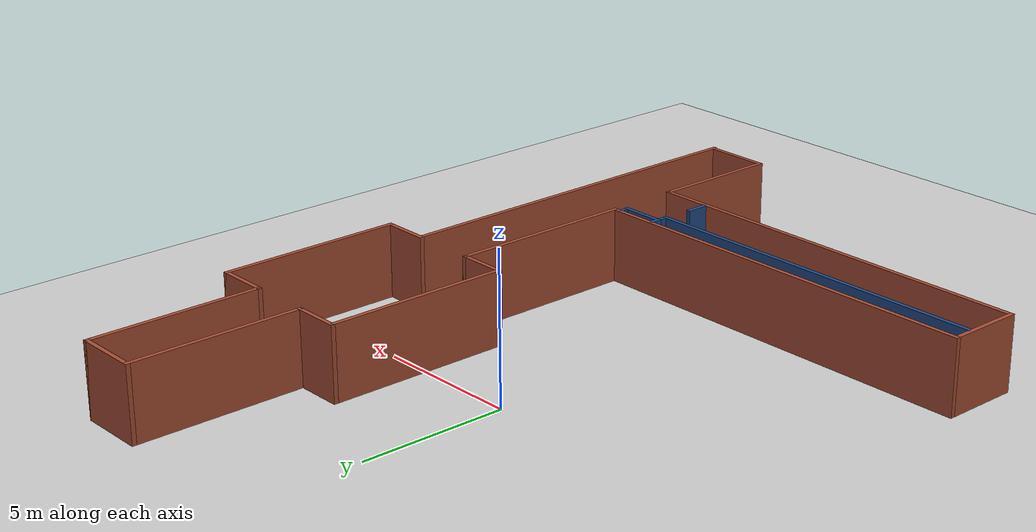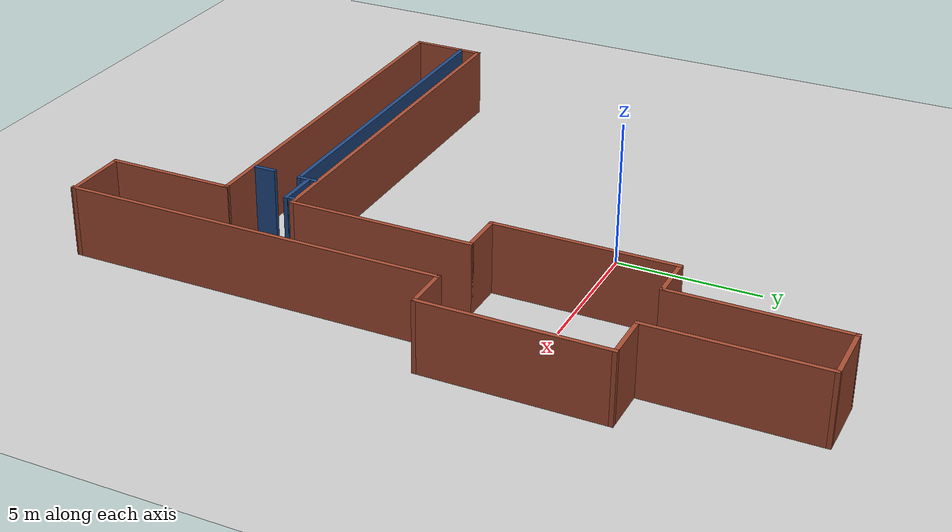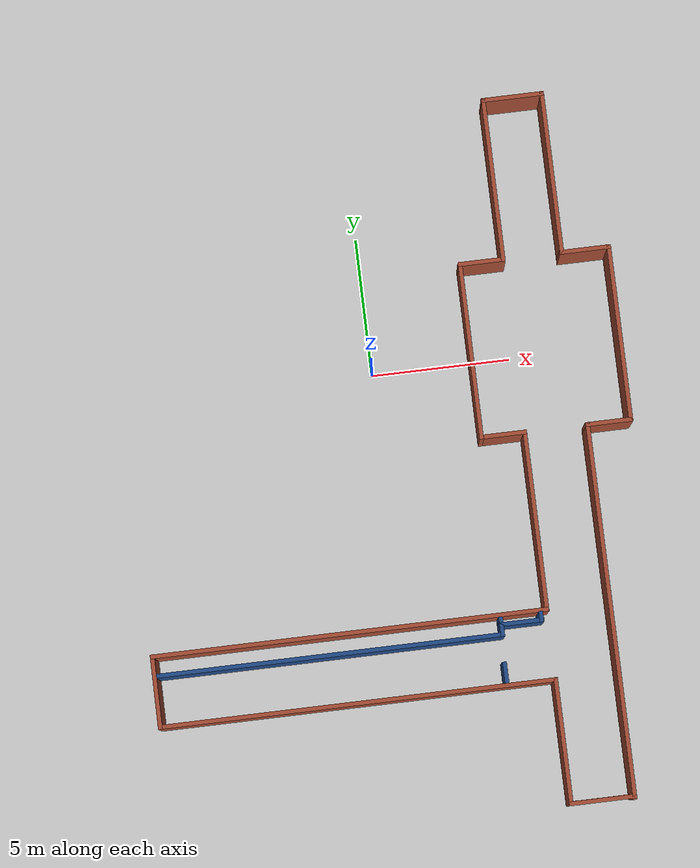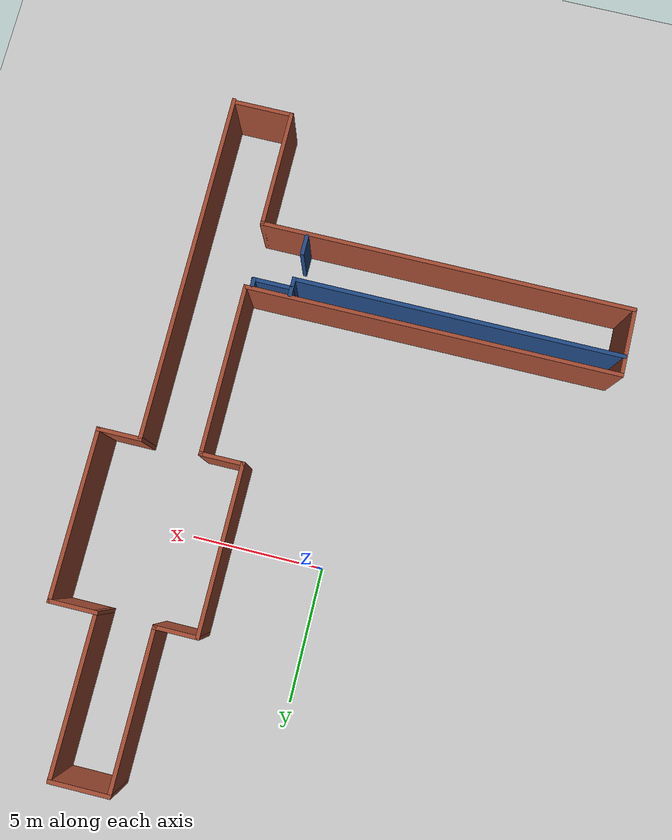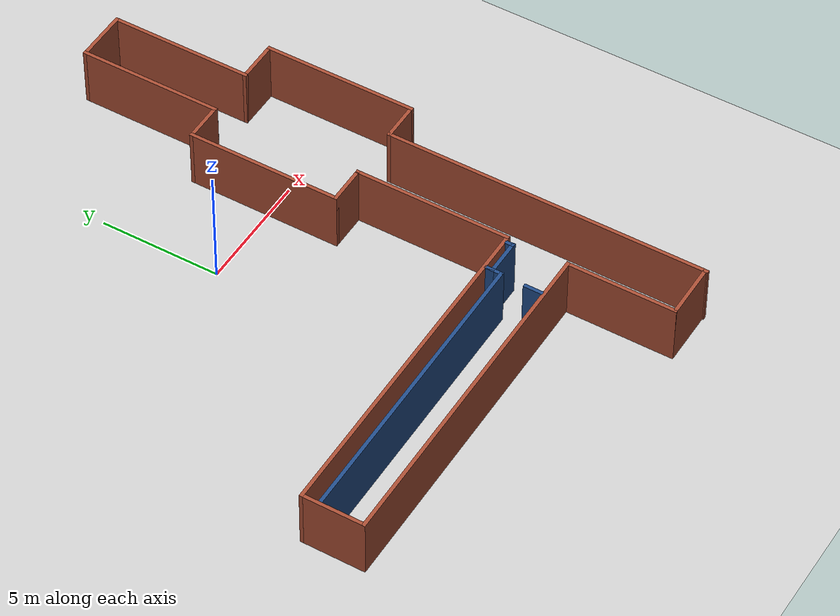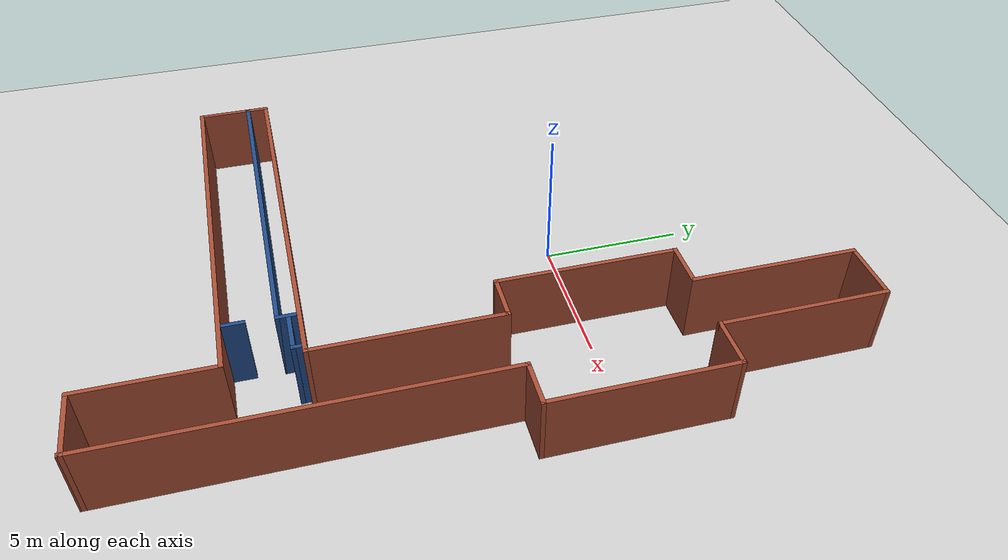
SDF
<sdf version="1.7">
 <world name="default">
  <light name="sun" type="directional">
   <pose>0 0 10 0 -0 0</pose>
   <diffuse>0.8 0.8 0.8 1</diffuse>
   <specular>0.2 0.2 0.2 1</specular>
   <attenuation>
    <range>1000</range>
    <constant>0.9</constant>
    <linear>0.01</linear>
    <quadratic>0.001</quadratic>
   </attenuation>
   <direction>-0.5 0.1 -0.9</direction>
   <spot><inner_angle>0</inner_angle><outer_angle>0</outer_angle><falloff>0</falloff></spot>
  </light>
  <model name="ground_plane">
   <static>1</static>
   <link name="link">
    <collision name="collision">
     <geometry><plane><normal>0 0 1</normal><size>100 100</size></plane></geometry>
     <surface>
      <contact><collide_bitmask>65535</collide_bitmask></contact>
      <friction><ode><mu>100</mu><mu2>50</mu2></ode></friction>
     </surface>
    </collision>
    <visual name="visual">
     <cast_shadows>0</cast_shadows>
     <geometry><plane><normal>0 0 1</normal><size>100 100</size></plane></geometry>
     <material>
      <script><uri>file://media/materials/scripts/gazebo.material</uri><name>Gazebo/Grey</name></script>
     </material>
    </visual>
   </link>
  </model>
  <gravity>0 0 -9.8</gravity>
  <magnetic_field>6e-06 2.3e-05 -4.2e-05</magnetic_field>
  <atmosphere type="adiabatic"/>
  <physics type="ode">
   <max_step_size>0.001</max_step_size>
   <real_time_factor>1</real_time_factor>
   <real_time_update_rate>1000</real_time_update_rate>
  </physics>
  <scene><ambient>0.4 0.4 0.4 1</ambient><background>0.7 0.7 0.7 1</background><shadows>1</shadows></scene>
  <spherical_coordinates>
   <surface_model>EARTH_WGS84</surface_model>
   <latitude_deg>0</latitude_deg>
   <longitude_deg>0</longitude_deg>
   <elevation>0</elevation>
   <heading_deg>0</heading_deg>
  </spherical_coordinates>
  <model name="Cedri_Hall">
   <pose>-0.010242 -3.56816 0 0 -0 0</pose>
   <link name="Wall_15">
    <collision name="Wall_15_Collision">
     <geometry><box><size>5.95 0.15 2.5</size></box></geometry>
     <pose>0 0 1.25 0 -0 0</pose>
    </collision>
    <visual name="Wall_15_Visual">
     <pose>0 0 1.25 0 -0 0</pose>
     <geometry><box><size>5.95 0.15 2.5</size></box></geometry>
     <material>
      <script><uri>file://media/materials/scripts/gazebo.material</uri><name>Gazebo/Bricks</name></script>
      <ambient>1 1 1 1</ambient>
     </material>
     <meta><layer>0</layer></meta>
    </visual>
    <pose>5.12497 9.775 0 0 -0 1.5708</pose>
   </link>
   <link name="Wall_17">
    <collision name="Wall_17_Collision">
     <geometry><box><size>2.26245 0.15 2.5</size></box></geometry>
     <pose>0 0 1.25 0 -0 0</pose>
    </collision>
    <visual name="Wall_17_Visual">
     <pose>0 0 1.25 0 -0 0</pose>
     <geometry><box><size>2.26245 0.15 2.5</size></box></geometry>
     <material>
      <script><uri>file://media/materials/scripts/gazebo.material</uri><name>Gazebo/Bricks</name></script>
      <ambient>1 1 1 1</ambient>
     </material>
     <meta><layer>0</layer></meta>
    </visual>
    <pose>6.18115 12.675 0 0 -0 0</pose>
   </link>
   <link name="Wall_19">
    <collision name="Wall_19_Collision">
     <geometry><box><size>5.95 0.15 2.5</size></box></geometry>
     <pose>0 0 1.25 0 -0 0</pose>
    </collision>
    <visual name="Wall_19_Visual">
     <pose>0 0 1.25 0 -0 0</pose>
     <geometry><box><size>5.95 0.15 2.5</size></box></geometry>
     <material>
      <script><uri>file://media/materials/scripts/gazebo.material</uri><name>Gazebo/Bricks</name></script>
      <ambient>1 1 1 1</ambient>
     </material>
     <meta><layer>0</layer></meta>
    </visual>
    <pose>7.23733 9.775 0 0 -0 -1.5708</pose>
   </link>
   <link name="Wall_21">
    <collision name="Wall_21_Collision">
     <geometry><box><size>1.7 0.15 2.5</size></box></geometry>
     <pose>0 0 1.25 0 -0 0</pose>
    </collision>
    <visual name="Wall_21_Visual">
     <pose>0 0 1.25 0 -0 0</pose>
     <geometry><box><size>1.7 0.15 2.5</size></box></geometry>
     <material>
      <script><uri>file://media/materials/scripts/gazebo.material</uri><name>Gazebo/Bricks</name></script>
      <ambient>1 1 1 1</ambient>
     </material>
     <meta><layer>0</layer></meta>
    </visual>
    <pose>4.34997 6.875 0 0 -0 3.14159</pose>
   </link>
   <link name="Wall_23">
    <collision name="Wall_23_Collision">
     <geometry><box><size>1.83776 0.15 2.5</size></box></geometry>
     <pose>0 0 1.25 0 -0 0</pose>
    </collision>
    <visual name="Wall_23_Visual">
     <pose>0 0 1.25 0 -0 0</pose>
     <geometry><box><size>1.83776 0.15 2.5</size></box></geometry>
     <material>
      <script><uri>file://media/materials/scripts/gazebo.material</uri><name>Gazebo/Bricks</name></script>
      <ambient>1 1 1 1</ambient>
     </material>
     <meta><layer>0</layer></meta>
    </visual>
    <pose>8.08115 6.875 0 0 -0 0</pose>
   </link>
   <link name="Wall_25">
    <collision name="Wall_25_Collision">
     <geometry><box><size>6.4 0.15 2.5</size></box></geometry>
     <pose>0 0 1.25 0 -0 0</pose>
    </collision>
    <visual name="Wall_25_Visual">
     <pose>0 0 1.25 0 -0 0</pose>
     <geometry><box><size>6.4 0.15 2.5</size></box></geometry>
     <material>
      <script><uri>file://media/materials/scripts/gazebo.material</uri><name>Gazebo/Bricks</name></script>
      <ambient>1 1 1 1</ambient>
     </material>
     <meta><layer>0</layer></meta>
    </visual>
    <pose>3.57497 3.75 0 0 -0 -1.5708</pose>
   </link>
   <link name="Wall_27">
    <collision name="Wall_27_Collision">
     <geometry><box><size>1.7 0.15 2.5</size></box></geometry>
     <pose>0 0 1.25 0 -0 0</pose>
    </collision>
    <visual name="Wall_27_Visual">
     <pose>0 0 1.25 0 -0 0</pose>
     <geometry><box><size>1.7 0.15 2.5</size></box></geometry>
     <material>
      <script><uri>file://media/materials/scripts/gazebo.material</uri><name>Gazebo/Bricks</name></script>
      <ambient>1 1 1 1</ambient>
     </material>
     <meta><layer>0</layer></meta>
    </visual>
    <pose>4.34997 0.625001 0 0 -0 0</pose>
   </link>
   <link name="Wall_29">
    <collision name="Wall_29_Collision">
     <geometry><box><size>6.4 0.15 2.5</size></box></geometry>
     <pose>0 0 1.25 0 -0 0</pose>
    </collision>
    <visual name="Wall_29_Visual">
     <pose>0 0 1.25 0 -0 0</pose>
     <geometry><box><size>6.4 0.15 2.5</size></box></geometry>
     <material>
      <script><uri>file://media/materials/scripts/gazebo.material</uri><name>Gazebo/Bricks</name></script>
      <ambient>1 1 1 1</ambient>
     </material>
     <meta><layer>0</layer></meta>
    </visual>
    <pose>8.92497 3.75 0 0 -0 -1.5708</pose>
   </link>
   <link name="Wall_31">
    <collision name="Wall_31_Collision">
     <geometry><box><size>1.7 0.15 2.5</size></box></geometry>
     <pose>0 0 1.25 0 -0 0</pose>
    </collision>
    <visual name="Wall_31_Visual">
     <pose>0 0 1.25 0 -0 0</pose>
     <geometry><box><size>1.7 0.15 2.5</size></box></geometry>
     <material>
      <script><uri>file://media/materials/scripts/gazebo.material</uri><name>Gazebo/Bricks</name></script>
      <ambient>1 1 1 1</ambient>
     </material>
     <meta><layer>0</layer></meta>
    </visual>
    <pose>8.14997 0.625001 0 0 -0 3.14159</pose>
   </link>
   <link name="Wall_33">
    <collision name="Wall_33_Collision">
     <geometry><box><size>6.5 0.15 2.5</size></box></geometry>
     <pose>0 0 1.25 0 -0 0</pose>
    </collision>
    <visual name="Wall_33_Visual">
     <pose>0 0 1.25 0 -0 0</pose>
     <geometry><box><size>6.5 0.15 2.5</size></box></geometry>
     <material>
      <script><uri>file://media/materials/scripts/gazebo.material</uri><name>Gazebo/Bricks</name></script>
      <ambient>1 1 1 1</ambient>
     </material>
     <meta><layer>0</layer></meta>
    </visual>
    <pose>5.12497 -2.55 0 0 -0 -1.5708</pose>
   </link>
   <link name="Wall_35">
    <collision name="Wall_35_Collision">
     <geometry><box><size>13.45 0.15 2.5</size></box></geometry>
     <pose>0 0 1.25 0 -0 0</pose>
    </collision>
    <visual name="Wall_35_Visual">
     <pose>0 0 1.25 0 -0 0</pose>
     <geometry><box><size>13.45 0.15 2.5</size></box></geometry>
     <material>
      <script><uri>file://media/materials/scripts/gazebo.material</uri><name>Gazebo/Bricks</name></script>
      <ambient>1 1 1 1</ambient>
     </material>
     <meta><layer>0</layer></meta>
    </visual>
    <pose>7.37497 -6.025 0 0 -0 -1.5708</pose>
   </link>
   <link name="Wall_59">
    <collision name="Wall_59_Collision">
     <geometry><box><size>14.2 0.15 2.5</size></box></geometry>
     <pose>0 0 1.25 0 -0 0</pose>
    </collision>
    <visual name="Wall_59_Visual">
     <pose>0 0 1.25 0 -0 0</pose>
     <geometry><box><size>14.2 0.15 2.5</size></box></geometry>
     <material>
      <script><uri>file://media/materials/scripts/gazebo.material</uri><name>Gazebo/Bricks</name></script>
      <ambient>1 1 1 1</ambient>
     </material>
     <meta><layer>0</layer></meta>
    </visual>
    <pose>-1.90003 -5.725 0 0 -0 3.14159</pose>
   </link>
   <link name="Wall_62">
    <collision name="Wall_62_Collision">
     <geometry><box><size>2.65 0.15 2.5</size></box></geometry>
     <pose>0 0 1.25 0 -0 0</pose>
    </collision>
    <visual name="Wall_62_Visual">
     <pose>0 0 1.25 0 -0 0</pose>
     <geometry><box><size>2.65 0.15 2.5</size></box></geometry>
     <material>
      <script><uri>file://media/materials/scripts/gazebo.material</uri><name>Gazebo/Bricks</name></script>
      <ambient>1 1 1 1</ambient>
     </material>
     <meta><layer>0</layer></meta>
    </visual>
    <pose>-8.92503 -6.975 0 0 -0 -1.5708</pose>
   </link>
   <link name="Wall_64">
    <collision name="Wall_64_Collision">
     <geometry><box><size>14.2 0.15 2.5</size></box></geometry>
     <pose>0 0 1.25 0 -0 0</pose>
    </collision>
    <visual name="Wall_64_Visual">
     <pose>0 0 1.25 0 -0 0</pose>
     <geometry><box><size>14.2 0.15 2.5</size></box></geometry>
     <material>
      <script><uri>file://media/materials/scripts/gazebo.material</uri><name>Gazebo/Bricks</name></script>
      <ambient>1 1 1 1</ambient>
     </material>
     <meta><layer>0</layer></meta>
    </visual>
    <pose>-1.90003 -8.225 0 0 -0 0</pose>
   </link>
   <link name="Wall_66">
    <collision name="Wall_66_Collision">
     <geometry><box><size>4.55 0.15 2.5</size></box></geometry>
     <pose>0 0 1.25 0 -0 0</pose>
    </collision>
    <visual name="Wall_66_Visual">
     <pose>0 0 1.25 0 -0 0</pose>
     <geometry><box><size>4.55 0.15 2.5</size></box></geometry>
     <material>
      <script><uri>file://media/materials/scripts/gazebo.material</uri><name>Gazebo/Bricks</name></script>
      <ambient>1 1 1 1</ambient>
     </material>
     <meta><layer>0</layer></meta>
    </visual>
    <pose>5.12497 -10.425 0 0 -0 -1.5708</pose>
   </link>
   <link name="Wall_68">
    <collision name="Wall_68_Collision">
     <geometry><box><size>2.4 0.15 2.5</size></box></geometry>
     <pose>0 0 1.25 0 -0 0</pose>
    </collision>
    <visual name="Wall_68_Visual">
     <pose>0 0 1.25 0 -0 0</pose>
     <geometry><box><size>2.4 0.15 2.5</size></box></geometry>
     <material>
      <script><uri>file://media/materials/scripts/gazebo.material</uri><name>Gazebo/Bricks</name></script>
      <ambient>1 1 1 1</ambient>
     </material>
     <meta><layer>0</layer></meta>
    </visual>
    <pose>6.24997 -12.625 0 0 -0 0</pose>
   </link>
   <link name="Wall_76">
    <collision name="Wall_76_Collision">
     <geometry><box><size>1.59435 0.15 2.5</size></box></geometry>
     <pose>0 0 1.25 0 -0 0</pose>
    </collision>
    <visual name="Wall_76_Visual">
     <pose>0 0 1.25 0 -0 0</pose>
     <geometry><box><size>1.59435 0.15 2.5</size></box></geometry>
     <material>
      <script><uri>file://media/materials/scripts/gazebo.material</uri><name>Gazebo/Grey</name></script>
      <ambient>0.12549 0.290196 0.529412 1</ambient>
     </material>
     <meta><layer>0</layer></meta>
    </visual>
    <pose>4.18581 -6.0682 0 0 -0 3.14159</pose>
   </link>
   <link name="Wall_82">
    <collision name="Wall_82_Collision">
     <geometry><box><size>0.396511 0.15 2.5</size></box></geometry>
     <pose>0 0 1.25 0 -0 0</pose>
    </collision>
    <visual name="Wall_82_Visual">
     <pose>0 0 1.25 0 -0 0</pose>
     <geometry><box><size>0.396511 0.15 2.5</size></box></geometry>
     <material>
      <script><uri>file://media/materials/scripts/gazebo.material</uri><name>Gazebo/Grey</name></script>
      <ambient>0.12549 0.290196 0.529412 1</ambient>
     </material>
     <meta><layer>0</layer></meta>
    </visual>
    <pose>3.46363 -5.94494 0 0 -0 1.5708</pose>
   </link>
   <link name="Wall_84">
    <collision name="Wall_84_Collision">
     <geometry><box><size>0.376511 0.15 2.5</size></box></geometry>
     <pose>0 0 1.25 0 -0 0</pose>
    </collision>
    <visual name="Wall_84_Visual">
     <pose>0 0 1.25 0 -0 0</pose>
     <geometry><box><size>0.376511 0.15 2.5</size></box></geometry>
     <material>
      <script><uri>file://media/materials/scripts/gazebo.material</uri><name>Gazebo/Grey</name></script>
      <ambient>0.12549 0.290196 0.529412 1</ambient>
     </material>
     <meta><layer>0</layer></meta>
    </visual>
    <pose>4.8932 -5.95494 0 0 -0 1.5708</pose>
   </link>
   <link name="Wall_86">
    <collision name="Wall_86_Collision">
     <geometry><box><size>0.75 0.15 2.5</size></box></geometry>
     <pose>0 0 1.25 0 -0 0</pose>
    </collision>
    <visual name="Wall_86_Visual">
     <pose>0 0 1.25 0 -0 0</pose>
     <geometry><box><size>0.75 0.15 2.5</size></box></geometry>
     <material>
      <script><uri>file://media/materials/scripts/gazebo.material</uri><name>Gazebo/Grey</name></script>
      <ambient>0.12549 0.290196 0.529412 1</ambient>
     </material>
     <meta><layer>0</layer></meta>
    </visual>
    <pose>3.46363 -6.12169 0 0 -0 -1.5708</pose>
   </link>
   <link name="Wall_87">
    <collision name="Wall_87_Collision">
     <geometry><box><size>12.5 0.15 2.5</size></box></geometry>
     <pose>0 0 1.25 0 -0 0</pose>
    </collision>
    <visual name="Wall_87_Visual">
     <pose>0 0 1.25 0 -0 0</pose>
     <geometry><box><size>12.5 0.15 2.5</size></box></geometry>
     <material>
      <script><uri>file://media/materials/scripts/gazebo.material</uri><name>Gazebo/Grey</name></script>
      <ambient>0.12549 0.290196 0.529412 1</ambient>
     </material>
     <meta><layer>0</layer></meta>
    </visual>
    <pose>-2.71137 -6.42169 0 0 -0 3.14159</pose>
   </link>
   <link name="Wall_89">
    <collision name="Wall_89_Collision">
     <geometry><box><size>0.789326 0.15 2.5</size></box></geometry>
     <pose>0 0 1.25 0 -0 0</pose>
    </collision>
    <visual name="Wall_89_Visual">
     <pose>0 0 1.25 0 -0 0</pose>
     <geometry><box><size>0.789326 0.15 2.5</size></box></geometry>
     <material>
      <script><uri>file://media/materials/scripts/gazebo.material</uri><name>Gazebo/Grey</name></script>
      <ambient>0.12549 0.290196 0.529412 1</ambient>
     </material>
     <meta><layer>0</layer></meta>
    </visual>
    <pose>3.4049 -7.78608 0 0 -0 1.5708</pose>
   </link>
   <static>1</static>
  </model>
 </world>
</sdf>
